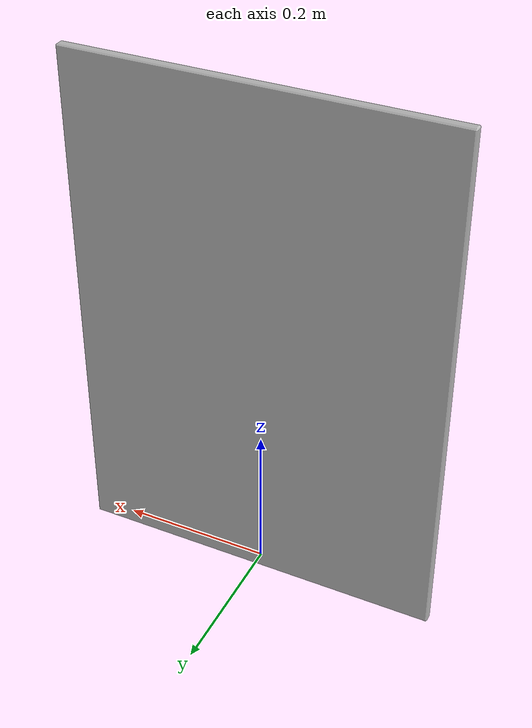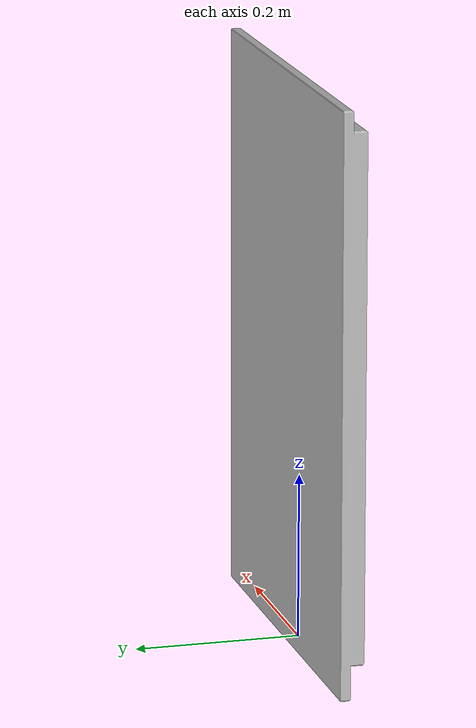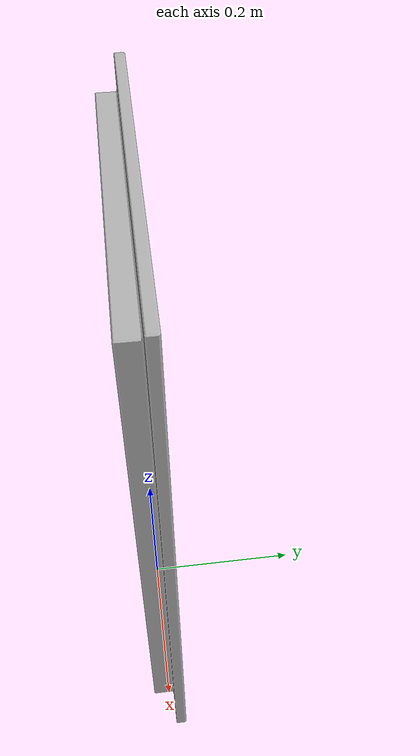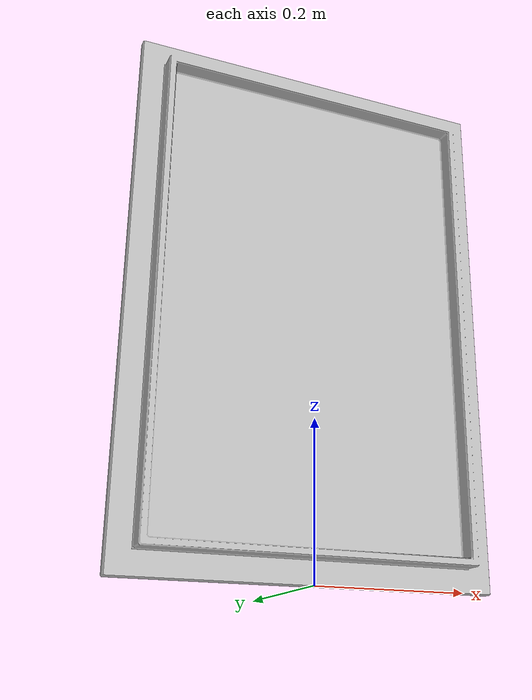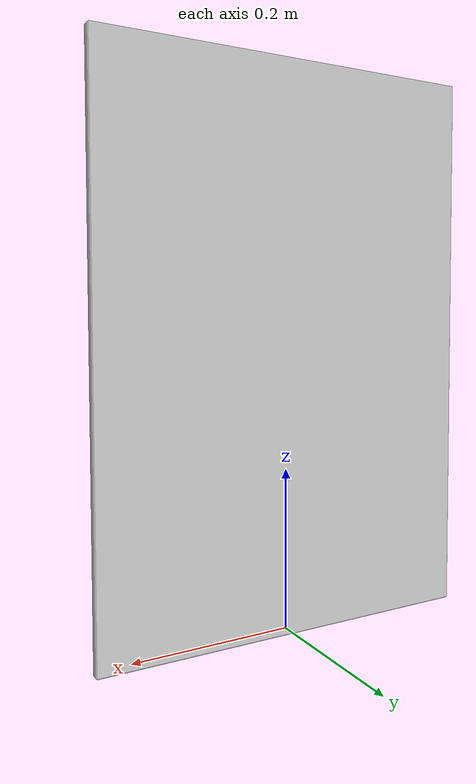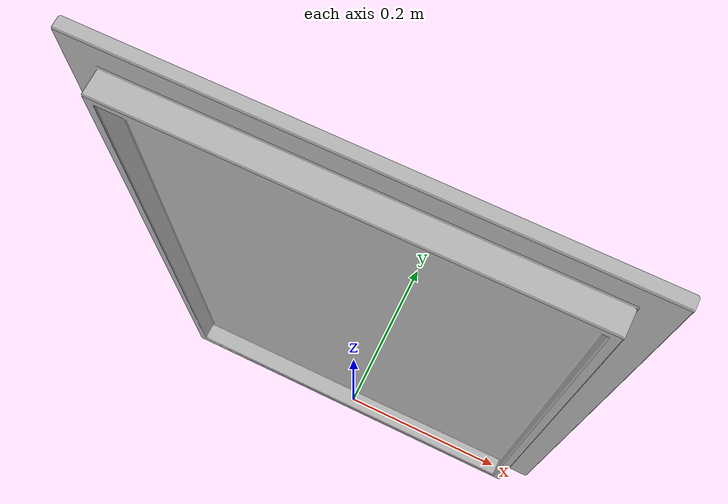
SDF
<?xml version="1.0" ?>
<sdf version="1.8">
  <model name="aws_robomaker_residential_PortraitB_03">
    <link name="link">
      <inertial>
        <mass>1</mass>
        <inertia>
          <ixx>  4.0161427430e-02 </ixx>
          <ixy>  1.4352328739e-06 </ixy>
          <ixz> -3.6480670326e-07 </ixz>
          <iyy>  2.0215045670e-02 </iyy>
          <iyz> -4.3301252455e-07 </iyz>
          <izz>  6.0277852191e-02 </izz>
        </inertia>
      </inertial>
      <collision name="collision">
        <geometry>
          <mesh>
            <uri>model://aws_robomaker_residential_PortraitB_03/meshes/aws_PortraitB_01_collision.DAE</uri>
            <scale>1 1 1</scale>
          </mesh>
        </geometry>
      </collision>
      <visual name="visual">
	      <geometry>
          <mesh>
            <uri>model://aws_robomaker_residential_PortraitB_03/meshes/aws_PortraitB_01_visual.DAE</uri>
          </mesh>
        </geometry>
      <meta> <layer> 2 </layer></meta>
      </visual>
    </link>
	  <static>1</static>
  </model>
</sdf>
